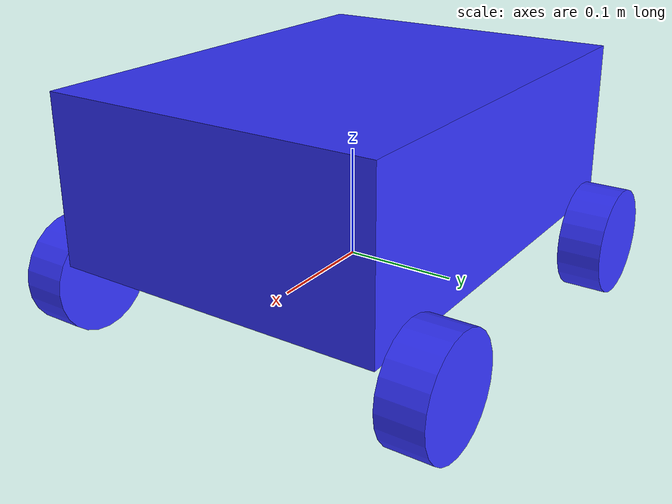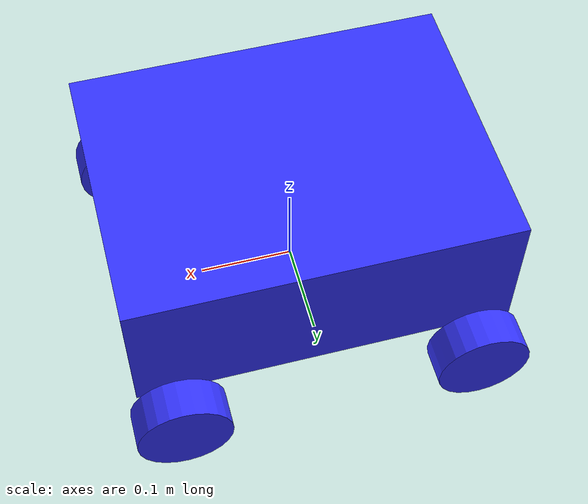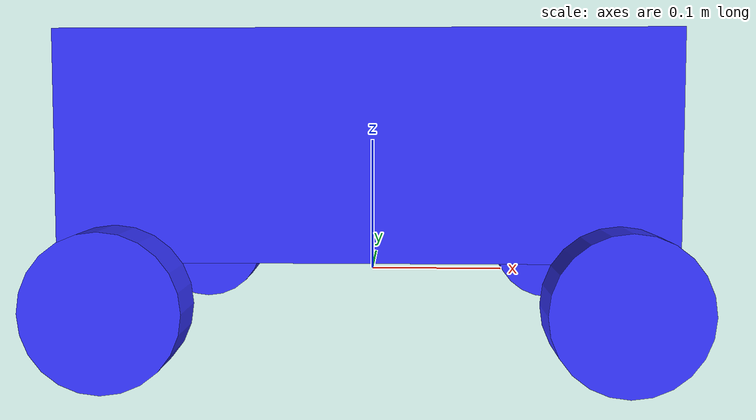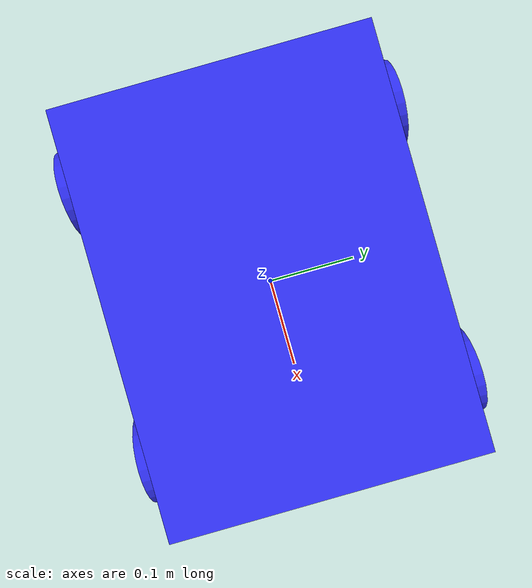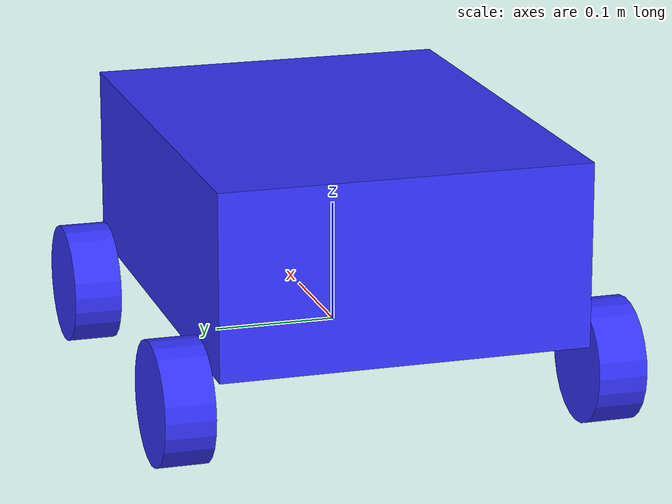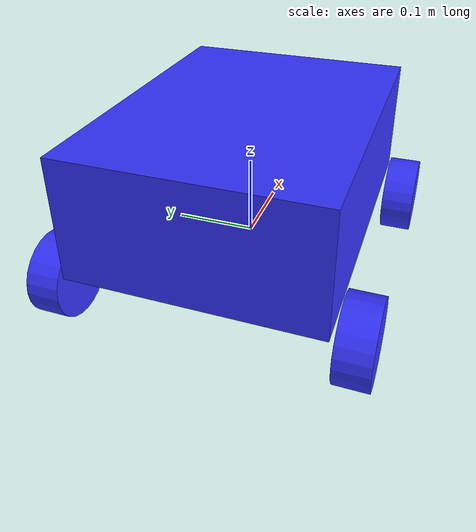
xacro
<?xml version="1.0"?>
<robot name="roscontrol2" xmlns:xacro="http://www.ros.org/wiki/xacro" >

    <xacro:include filename="inertial_macro.xacro"/>

    <material name="white">
        <color rgba="1 1 1 1" />
    </material>

    <material name="orange">
        <color rgba="1 0.3 0.1 1"/>
    </material>

    <material name="blue">
        <color rgba="0.2 0.2 1 1"/>
    </material>

    <material name="black">
        <color rgba="0 0 0 1"/>
    </material>

    <material name="red">
        <color rgba="1 0 0 1"/>
    </material>

    <!-- BASE LINK -->

    <link name="base_link">

    </link>

    <!-- CHASSIS LINK -->

    <joint name="chassis_joint" type="fixed">
        <parent link="base_link"/>
        <child link="chassis"/>
        <origin xyz="0 0 0"/>
    </joint>

    <link name="chassis">
        <visual>
            <origin xyz="0 0 0.1"/>
            <geometry>
                <box size="0.4 0.3 0.15"/>
            </geometry>
            <material name="blue"/>
        </visual>
        <collision>
            <origin xyz="0 0 0.10"/>
            <geometry>
                <box size="0.4 0.3 0.15"/>
            </geometry>
        </collision>
        <xacro:inertial_box mass="0.5" x="0.4" y="0.3" z="0.15">
            <origin xyz="0.15 0 0.075" rpy="0 0 0"/>
        </xacro:inertial_box>
    </link>

    <gazebo reference="chassis">
        <material>Gazebo/White</material>
    </gazebo>

    <!-- front_LEFT WHEEL LINK -->

    <joint name="front_left_wheel_joint" type="continuous">
        <parent link="base_link"/>
        <child link="front_left_wheel"/>
        <origin xyz="0.16 0.175 0" rpy="-${pi/2} 0 0" />
        <axis xyz="0 0 1"/>
    </joint>

    <link name="front_left_wheel">
        <visual>
            <geometry>
                <cylinder radius="0.05" length="0.04"/>
            </geometry>
            <material name="blue"/>
        </visual>
        <collision>
            <geometry>
                <cylinder radius="0.05" length="0.04"/>
            </geometry>
        </collision>
        <xacro:inertial_cylinder mass="0.1" length="0.04" radius="0.05">
            <origin xyz="0 0 0" rpy="0 0 0"/>
        </xacro:inertial_cylinder>
    </link>

    <gazebo reference="front_left_wheel">
      <mu1 value="200.0"/>
      <mu2 value="100.0"/>
      <kp value="10000000.0" />
      <kd value="1.0" />
      <material>Gazebo/Blue</material>
    </gazebo>

    <transmission name="front_left_wheel_trans">
      <type>transmission_interface/SimpleTransmission</type>
      <actuator name="front_left_wheel_motor">
        <mechanicalReduction>1</mechanicalReduction>
      </actuator>
      <joint name="front_left_wheel_joint">
        <hardwareInterface>VelocityJointInterface</hardwareInterface>
      </joint>
    </transmission>

    <!-- front_RIGHT WHEEL LINK -->

    <joint name="front_right_wheel_joint" type="continuous">
        <parent link="base_link"/>
        <child link="front_right_wheel"/>
        <origin xyz="0.16 -0.175 0" rpy="${pi/2} 0 0" />
        <axis xyz="0 0 -1"/>
    </joint>

    <link name="front_right_wheel">
        <visual>
            <geometry>
                <cylinder radius="0.05" length="0.04"/>
            </geometry>
            <material name="blue"/>
        </visual>
        <collision>
            <geometry>
                <cylinder radius="0.05" length="0.04"/>
            </geometry>
        </collision>
        <xacro:inertial_cylinder mass="0.1" length="0.04" radius="0.05">
            <origin xyz="0 0 0" rpy="0 0 0"/>
        </xacro:inertial_cylinder>
    </link>

    <gazebo reference="front_right_wheel">
      <mu1 value="200.0"/>
      <mu2 value="100.0"/>
      <kp value="10000000.0" />
      <kd value="1.0" />
      <material>Gazebo/Blue</material>
    </gazebo>

    <transmission name="front_right_wheel_trans">
      <type>transmission_interface/SimpleTransmission</type>
      <actuator name="front_right_wheel_motor">
        <mechanicalReduction>1</mechanicalReduction>
      </actuator>
      <joint name="front_right_wheel_joint">
        <hardwareInterface>VelocityJointInterface</hardwareInterface>
      </joint>
    </transmission>

    <!-- back_left WHEEL LINK -->

    <joint name="back_left_wheel_joint" type="continuous">
        <parent link="base_link"/>
        <child link="back_left_wheel"/>
        <origin xyz="-0.16 0.175 0" rpy="-${pi/2} 0 0" />
        <axis xyz="0 0 1"/>
    </joint>

    <link name="back_left_wheel">
        <visual>
            <geometry>
                <cylinder radius="0.05" length="0.04"/>
            </geometry>
            <material name="blue"/>
        </visual>
        <collision>
            <geometry>
                <cylinder radius="0.05" length="0.04"/>
            </geometry>
        </collision>
        <xacro:inertial_cylinder mass="0.1" length="0.04" radius="0.05">
            <origin xyz="0 0 0" rpy="0 0 0"/>
        </xacro:inertial_cylinder>
    </link>

    <gazebo reference="back_left_wheel">
      <mu1 value="200.0"/>
      <mu2 value="100.0"/>
      <kp value="10000000.0" />
      <kd value="1.0" />
      <material>Gazebo/Blue</material>
    </gazebo>

    <transmission name="back_left_wheel_trans">
      <type>transmission_interface/SimpleTransmission</type>
      <actuator name="back_left_wheel_motor">
        <mechanicalReduction>1</mechanicalReduction>
      </actuator>
      <joint name="back_left_wheel_joint">
        <hardwareInterface>VelocityJointInterface</hardwareInterface>
      </joint>
    </transmission>

    <!-- back_RIGHT WHEEL LINK -->

    <joint name="back_right_wheel_joint" type="continuous">
        <parent link="base_link"/>
        <child link="back_right_wheel"/>
        <origin xyz="-0.16 -0.175 0" rpy="${pi/2} 0 0" />
        <axis xyz="0 0 -1"/>
    </joint>

    <link name="back_right_wheel">
        <visual>
            <geometry>
                <cylinder radius="0.05" length="0.04"/>
            </geometry>
            <material name="blue"/>
        </visual>
        <collision>
            <geometry>
                <cylinder radius="0.05" length="0.04"/>
            </geometry>
        </collision>
        <xacro:inertial_cylinder mass="0.1" length="0.04" radius="0.05">
            <origin xyz="0 0 0" rpy="0 0 0"/>
        </xacro:inertial_cylinder>
    </link>

    <gazebo reference="back_right_wheel">
      <mu1 value="200.0"/>
      <mu2 value="100.0"/>
      <kp value="10000000.0" />
      <kd value="1.0" />
      <material>Gazebo/Blue</material>
    </gazebo>

    <transmission name="back_right_wheel_trans">
      <type>transmission_interface/SimpleTransmission</type>
      <actuator name="back_right_wheel_motor">
        <mechanicalReduction>1</mechanicalReduction>
      </actuator>
      <joint name="back_right_wheel_joint">
        <hardwareInterface>VelocityJointInterface</hardwareInterface>
      </joint>
    </transmission>
  <gazebo>
    <plugin name="gazebo_ros_control" filename="libgazebo_ros_control.so">
      <robotNamespace>/</robotNamespace>
    </plugin>
  </gazebo>

</robot>
